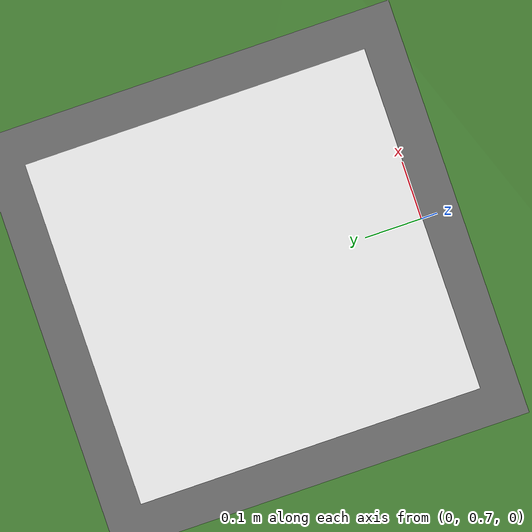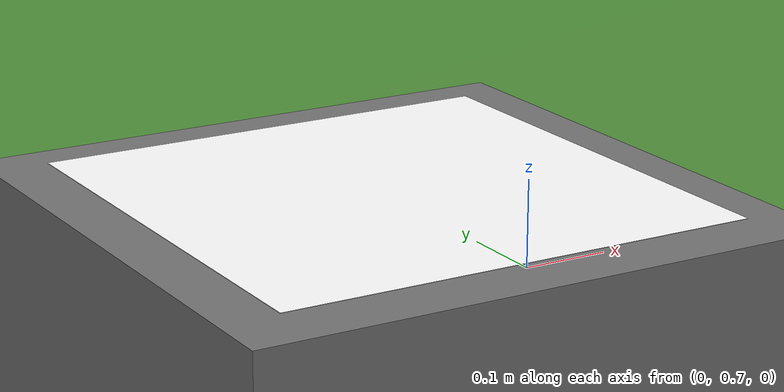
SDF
<?xml version="1.0" encoding="UTF-8"?>
<sdf version="1.9">
  <world name="france">
    <physics type="ode">
      <max_step_size>0.004</max_step_size>
      <real_time_factor>1.0</real_time_factor>
      <real_time_update_rate>250</real_time_update_rate>
    </physics>

    <gravity>0 0 -9.8</gravity>
    <magnetic_field>6e-06 2.3e-05 -4.2e-05</magnetic_field>
    <atmosphere type="adiabatic"/>

    <scene>
      <sky>
        <clouds>
          <speed>12</speed>
        </clouds>
      </sky>
      <grid>true</grid>
      <ambient>0.5 0.5 0.5 0.3</ambient>
      <background>0.3 0.3 0.3 0.3</background>
      <shadows>true</shadows>
    </scene>

    <model name="france_map">
      <static>true</static>
      <pose>0 0 -15 1.57079632679 0 0</pose>
      <link name="link">
        <collision name="collision">
          <geometry>
            <mesh>
              <uri>meshes/france.stl</uri>
              <scale>1 1 1</scale>
            </mesh>
          </geometry>
          <surface>
            <friction>
              <ode>
                <mu>0.8</mu>
                <mu2>0.8</mu2>
              </ode>
            </friction>
            <bounce/>
            <contact>
              <collide_bitmask>65535</collide_bitmask>
              <ode>
                <min_depth>0.005</min_depth>
                <kp>1e8</kp>
              </ode>
            </contact>
          </surface>
        </collision>

        <visual name="visual">
          <cast_shadows>true</cast_shadows>
          <geometry>
            <mesh>
              <uri>meshes/france.stl</uri>
              <scale>1 1 1</scale>
            </mesh>
          </geometry>
          <material>
            <ambient>0.2 0.35 0.15 1</ambient>
            <diffuse>0.3 0.55 0.22 1</diffuse>
            <specular>0.05 0.05 0.05 1</specular>
          </material>
        </visual>

        <inertial>
          <mass>1</mass>
          <inertia>
            <ixx>1</ixx>
            <ixy>0</ixy>
            <ixz>0</ixz>
            <iyy>1</iyy>
            <iyz>0</iyz>
            <izz>1</izz>
          </inertia>
        </inertial>

        <enable_wind>false</enable_wind>
      </link>
    </model>

    <model name="spawn_platform">
      <static>true</static>
      <pose>0 0 -0.5 0 0 0</pose>
      <link name="link">
        <collision name="collision">
          <geometry>
            <box>
              <size>20 20 1</size>
            </box>
          </geometry>
          <surface>
            <friction>
              <ode>
                <mu>1.0</mu>
                <mu2>1.0</mu2>
              </ode>
            </friction>
          </surface>
        </collision>

        <visual name="visual">
          <cast_shadows>true</cast_shadows>
          <geometry>
            <box>
              <size>20 20 1</size>
            </box>
          </geometry>
          <material>
            <ambient>0.3 0.3 0.3 1</ambient>
            <diffuse>0.45 0.45 0.45 1</diffuse>
            <specular>0.05 0.05 0.05 1</specular>
          </material>
        </visual>
      </link>
    </model>

    <include>
      <uri>model://apriltag_landing_pad</uri>
      <name>landing_target</name>
      <pose>0.0 1.0 0.0025 0 0 0</pose>
    </include>

    <light name="sunUTC" type="directional">
      <pose>0 0 500 0 0 0</pose>
      <cast_shadows>true</cast_shadows>
      <intensity>1</intensity>
      <direction>0.001 0.625 -0.78</direction>
      <diffuse>0.904 0.904 0.904 1</diffuse>
      <specular>0.271 0.271 0.271 1</specular>
      <attenuation>
        <range>2000</range>
        <linear>0</linear>
        <constant>1</constant>
        <quadratic>0</quadratic>
      </attenuation>
      <spot>
        <inner_angle>0</inner_angle>
        <outer_angle>0</outer_angle>
        <falloff>0</falloff>
      </spot>
    </light>

    <light type="directional" name="sun_2">
      <cast_shadows>true</cast_shadows>
      <pose>200 200 200 0 0 0</pose>
      <diffuse>0.5 0.5 0.5 0.3</diffuse>
      <specular>0.2 0.2 0.2 0.3</specular>
      <attenuation>
        <range>2000</range>
        <constant>1</constant>
        <linear>0</linear>
        <quadratic>0</quadratic>
      </attenuation>
      <direction>0.01 0.01 -0.9</direction>
    </light>

    <spherical_coordinates>
      <surface_model>EARTH_WGS84</surface_model>
      <world_frame_orientation>ENU</world_frame_orientation>
      <latitude_deg>47.397971057728974</latitude_deg>
      <longitude_deg>8.546163739800146</longitude_deg>
      <elevation>0</elevation>
    </spherical_coordinates>
  </world>
</sdf>

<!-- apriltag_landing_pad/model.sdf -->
<sdf version='1.9'>
  <model name='apriltag_landing_pad'>
    <static>true</static>
    <link name='pad_link'>
      <visual name='pad_visual'>
        <pose>0 0 0.003 0 0 0</pose>
        <geometry>
          <plane>
            <normal>0 0 1</normal>
            <size>0.6 0.6</size>
          </plane>
        </geometry>
        <material>
          <ambient>1 1 1 1</ambient>
          <diffuse>1 1 1 1</diffuse>
          <specular>0 0 0 1</specular>
          <pbr>
            <metal>
              <albedo_map>model://apriltag_landing_pad/materials/textures/tag36h11_id0.png</albedo_map>
              <roughness>1.0</roughness>
              <metalness>0.0</metalness>
            </metal>
          </pbr>
        </material>
      </visual>
      <collision name='pad_collision'>
        <geometry>
          <box><size>0.6 0.6 0.005</size></box>
        </geometry>
      </collision>
    </link>
  </model>
</sdf>
